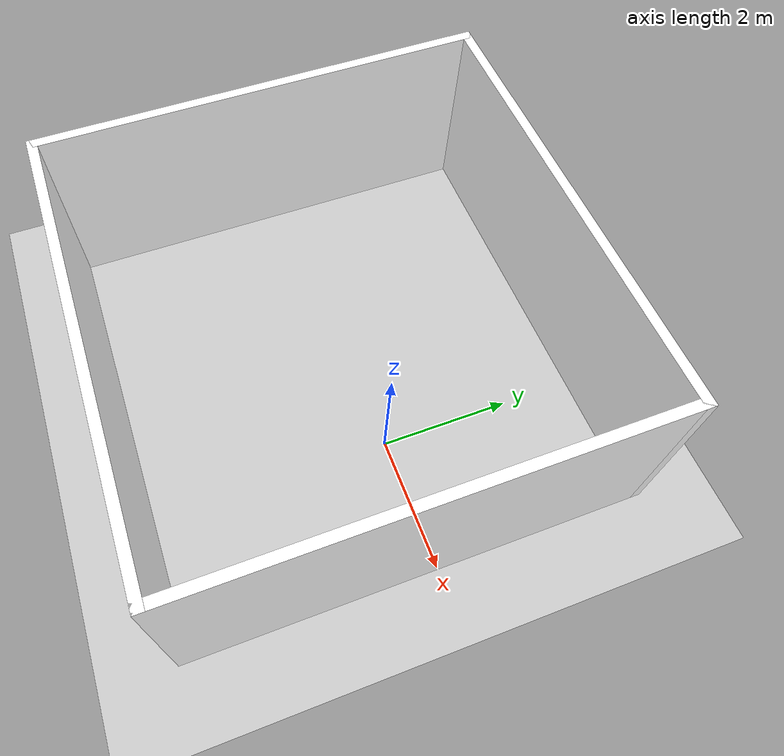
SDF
<sdf version="1.6">
 <world name="default">
  <light name="sun" type="directional">
   <pose>0 0 10 0 -0 0</pose>
   <diffuse>0.8 0.8 0.8 1</diffuse>
   <specular>0.2 0.2 0.2 1</specular>
   <attenuation>
    <range>1000</range>
    <constant>0.9</constant>
    <linear>0.01</linear>
    <quadratic>0.001</quadratic>
   </attenuation>
   <direction>-0.5 0.1 -0.9</direction>
  </light>
  <model name="ground_plane">
   <static>1</static>
   <link name="link">
    <collision name="collision">
     <geometry><plane><normal>0 0 1</normal><size>100 100</size></plane></geometry>
     <surface>
      <contact><collide_bitmask>65535</collide_bitmask></contact>
      <friction><ode><mu>100</mu><mu2>50</mu2></ode></friction>
     </surface>
    </collision>
    <visual name="visual">
     <cast_shadows>0</cast_shadows>
     <geometry><plane><normal>0 0 1</normal><size>100 100</size></plane></geometry>
     <material>
      <script><uri>file://media/materials/scripts/gazebo.material</uri><name>Gazebo/Grey</name></script>
     </material>
    </visual>
   </link>
  </model>
  <physics name="default_physics" default="0" type="ode">
   <real_time_update_rate>1000</real_time_update_rate>
   <max_step_size>0.001</max_step_size>
   <real_time_factor>1</real_time_factor>
   <ode>
    <solver>
     <type>quick</type>
     <iters>150</iters>
     <precon_iters>0</precon_iters>
     <sor>1.4</sor>
     <use_dynamic_moi_rescaling>1</use_dynamic_moi_rescaling>
    </solver>
    <constraints>
     <cfm>1e-05</cfm>
     <erp>0.2</erp>
     <contact_max_correcting_vel>2000</contact_max_correcting_vel>
     <contact_surface_layer>0.01</contact_surface_layer>
    </constraints>
   </ode>
  </physics>
  <scene><ambient>0.4 0.4 0.4 1</ambient><background>0.7 0.7 0.7 1</background><shadows>1</shadows></scene>
  <gravity>0 0 -9.8</gravity>
  <magnetic_field>6e-06 2.3e-05 -4.2e-05</magnetic_field>
  <atmosphere type="adiabatic"/>
  <spherical_coordinates>
   <surface_model>EARTH_WGS84</surface_model>
   <latitude_deg>0</latitude_deg>
   <longitude_deg>0</longitude_deg>
   <elevation>0</elevation>
   <heading_deg>0</heading_deg>
  </spherical_coordinates>
  <model name="turtlebot3_square10">
   <link name="Wall_0">
    <pose>0 3.425 0 0 -0 0</pose>
    <inertial>
     <mass>1</mass>
     <inertia><ixx>1</ixx><ixy>0</ixy><ixz>0</ixz><iyy>1</iyy><iyz>0</iyz><izz>1</izz></inertia>
    </inertial>
    <visual name="Wall_0_Visual">
     <pose>0 0 1.5 0 -0 0</pose>
     <geometry><box><size>7 0.15 3</size></box></geometry>
     <material>
      <script>
       <uri>model://turtlebot3_square10/materials/scripts</uri>
       <uri>model://turtlebot3_square10/materials/textures</uri>
       <name>BrickBox/Diffuse</name>
      </script>
      <ambient>1 1 1 1</ambient>
      <shader type="pixel"><normal_map>__default__</normal_map></shader>
      <diffuse>1 1 1 1</diffuse>
      <specular>0.2 0.2 0.2 1</specular>
      <emissive>0 0 0 1</emissive>
     </material>
    </visual>
    <collision name="Wall_0_Collision">
     <pose>0 0 1.5 0 -0 0</pose>
     <geometry><box><size>7 0.15 3</size></box></geometry>
     <surface>
      <friction>
       <ode><mu>1</mu><mu2>1</mu2><fdir1>0 0 0</fdir1><slip1>0</slip1><slip2>0</slip2></ode>
       <torsional>
        <coefficient>1</coefficient>
        <patch_radius>0</patch_radius>
        <surface_radius>0</surface_radius>
        <use_patch_radius>1</use_patch_radius>
        <ode><slip>0</slip></ode>
       </torsional>
      </friction>
      <bounce><restitution_coefficient>0</restitution_coefficient><threshold>1e+06</threshold></bounce>
      <contact>
       <collide_without_contact>0</collide_without_contact>
       <collide_without_contact_bitmask>1</collide_without_contact_bitmask>
       <collide_bitmask>1</collide_bitmask>
       <ode>
        <soft_cfm>0</soft_cfm>
        <soft_erp>0.2</soft_erp>
        <kp>1e+13</kp>
        <kd>1</kd>
        <max_vel>0.01</max_vel>
        <min_depth>0</min_depth>
       </ode>
       <bullet>
        <split_impulse>1</split_impulse>
        <split_impulse_penetration_threshold>-0.01</split_impulse_penetration_threshold>
        <soft_cfm>0</soft_cfm>
        <soft_erp>0.2</soft_erp>
        <kp>1e+13</kp>
        <kd>1</kd>
       </bullet>
      </contact>
     </surface>
    </collision>
   </link>
   <link name="Wall_2">
    <pose>-3.425 0 0 0 0 -1.5708</pose>
    <inertial>
     <mass>1</mass>
     <inertia><ixx>1</ixx><ixy>0</ixy><ixz>0</ixz><iyy>1</iyy><iyz>0</iyz><izz>1</izz></inertia>
    </inertial>
    <visual name="Wall_2_Visual">
     <pose>0 0 1.5 0 -0 0</pose>
     <geometry><box><size>7 0.15 3</size></box></geometry>
     <material>
      <script>
       <uri>model://turtlebot3_square10/materials/scripts</uri>
       <uri>model://turtlebot3_square10/materials/textures</uri>
       <name>BrickBox1/Diffuse</name>
      </script>
      <ambient>1 1 1 1</ambient>
      <shader type="pixel"><normal_map>__default__</normal_map></shader>
      <diffuse>1 1 1 1</diffuse>
      <specular>0.2 0.2 0.2 1</specular>
      <emissive>0 0 0 1</emissive>
     </material>
    </visual>
    <collision name="Wall_2_Collision">
     <pose>0 0 1.5 0 -0 0</pose>
     <geometry><box><size>7 0.15 3</size></box></geometry>
     <surface>
      <friction>
       <ode><mu>1</mu><mu2>1</mu2><fdir1>0 0 0</fdir1><slip1>0</slip1><slip2>0</slip2></ode>
       <torsional>
        <coefficient>1</coefficient>
        <patch_radius>0</patch_radius>
        <surface_radius>0</surface_radius>
        <use_patch_radius>1</use_patch_radius>
        <ode><slip>0</slip></ode>
       </torsional>
      </friction>
      <bounce><restitution_coefficient>0</restitution_coefficient><threshold>1e+06</threshold></bounce>
      <contact>
       <collide_without_contact>0</collide_without_contact>
       <collide_without_contact_bitmask>1</collide_without_contact_bitmask>
       <collide_bitmask>1</collide_bitmask>
       <ode>
        <soft_cfm>0</soft_cfm>
        <soft_erp>0.2</soft_erp>
        <kp>1e+13</kp>
        <kd>1</kd>
        <max_vel>0.01</max_vel>
        <min_depth>0</min_depth>
       </ode>
       <bullet>
        <split_impulse>1</split_impulse>
        <split_impulse_penetration_threshold>-0.01</split_impulse_penetration_threshold>
        <soft_cfm>0</soft_cfm>
        <soft_erp>0.2</soft_erp>
        <kp>1e+13</kp>
        <kd>1</kd>
       </bullet>
      </contact>
     </surface>
    </collision>
   </link>
   <link name="Wall_3">
    <pose>0 -3.425 0 0 -0 0</pose>
    <inertial>
     <mass>1</mass>
     <inertia><ixx>1</ixx><ixy>0</ixy><ixz>0</ixz><iyy>1</iyy><iyz>0</iyz><izz>1</izz></inertia>
    </inertial>
    <visual name="Wall_3_Visual">
     <pose>0 0 1.5 0 -0 0</pose>
     <geometry><box><size>7 0.15 3</size></box></geometry>
     <material>
      <script>
       <uri>model://turtlebot3_square10/materials/scripts</uri>
       <uri>model://turtlebot3_square10/materials/textures</uri>
       <name>BrickBox2/Diffuse</name>
      </script>
      <ambient>1 1 1 0</ambient>
      <shader type="pixel"><normal_map>__default__</normal_map></shader>
      <diffuse>1 1 1 0</diffuse>
      <specular>0.2 0.2 0.2 0</specular>
      <emissive>0 0 0 1</emissive>
     </material>
    </visual>
    <collision name="Wall_3_Collision">
     <pose>0 0 1.5 0 -0 0</pose>
     <geometry><box><size>7 0.15 3</size></box></geometry>
     <surface>
      <friction>
       <ode><mu>1</mu><mu2>1</mu2><fdir1>0 0 0</fdir1><slip1>0</slip1><slip2>0</slip2></ode>
       <torsional>
        <coefficient>1</coefficient>
        <patch_radius>0</patch_radius>
        <surface_radius>0</surface_radius>
        <use_patch_radius>1</use_patch_radius>
        <ode><slip>0</slip></ode>
       </torsional>
      </friction>
      <bounce><restitution_coefficient>0</restitution_coefficient><threshold>1e+06</threshold></bounce>
      <contact>
       <collide_without_contact>0</collide_without_contact>
       <collide_without_contact_bitmask>1</collide_without_contact_bitmask>
       <collide_bitmask>1</collide_bitmask>
       <ode>
        <soft_cfm>0</soft_cfm>
        <soft_erp>0.2</soft_erp>
        <kp>1e+13</kp>
        <kd>1</kd>
        <max_vel>0.01</max_vel>
        <min_depth>0</min_depth>
       </ode>
       <bullet>
        <split_impulse>1</split_impulse>
        <split_impulse_penetration_threshold>-0.01</split_impulse_penetration_threshold>
        <soft_cfm>0</soft_cfm>
        <soft_erp>0.2</soft_erp>
        <kp>1e+13</kp>
        <kd>1</kd>
       </bullet>
      </contact>
     </surface>
    </collision>
   </link>
   <link name="Wall_4">
    <pose>3.425 0 0 0 -0 1.5708</pose>
    <inertial>
     <mass>1</mass>
     <inertia><ixx>1</ixx><ixy>0</ixy><ixz>0</ixz><iyy>1</iyy><iyz>0</iyz><izz>1</izz></inertia>
    </inertial>
    <visual name="Wall_4_Visual">
     <pose>0 0 1.5 0 -0 0</pose>
     <geometry><box><size>7 0.15 3</size></box></geometry>
     <material>
      <script>
       <uri>model://turtlebot3_square10/materials/scripts</uri>
       <uri>model://turtlebot3_square10/materials/textures</uri>
       <name>BrickBox3/Diffuse</name>
      </script>
      <ambient>1 1 1 1</ambient>
      <shader type="pixel"><normal_map>__default__</normal_map></shader>
      <diffuse>1 1 1 1</diffuse>
      <specular>0.2 0.2 0.2 1</specular>
      <emissive>0 0 0 1</emissive>
     </material>
    </visual>
    <collision name="Wall_4_Collision">
     <pose>0 0 1.5 0 -0 0</pose>
     <geometry><box><size>7 0.15 3</size></box></geometry>
     <surface>
      <friction>
       <ode><mu>1</mu><mu2>1</mu2><fdir1>0 0 0</fdir1><slip1>0</slip1><slip2>0</slip2></ode>
       <torsional>
        <coefficient>1</coefficient>
        <patch_radius>0</patch_radius>
        <surface_radius>0</surface_radius>
        <use_patch_radius>1</use_patch_radius>
        <ode><slip>0</slip></ode>
       </torsional>
      </friction>
      <bounce><restitution_coefficient>0</restitution_coefficient><threshold>1e+06</threshold></bounce>
      <contact>
       <collide_without_contact>0</collide_without_contact>
       <collide_without_contact_bitmask>1</collide_without_contact_bitmask>
       <collide_bitmask>1</collide_bitmask>
       <ode>
        <soft_cfm>0</soft_cfm>
        <soft_erp>0.2</soft_erp>
        <kp>1e+13</kp>
        <kd>1</kd>
        <max_vel>0.01</max_vel>
        <min_depth>0</min_depth>
       </ode>
       <bullet>
        <split_impulse>1</split_impulse>
        <split_impulse_penetration_threshold>-0.01</split_impulse_penetration_threshold>
        <soft_cfm>0</soft_cfm>
        <soft_erp>0.2</soft_erp>
        <kp>1e+13</kp>
        <kd>1</kd>
       </bullet>
      </contact>
     </surface>
    </collision>
   </link>
   <static>1</static>
   <pose>-1.47109 -0.252338 0 0 -0 0</pose>
  </model>
  <model name="safe">
   <link name="link">
    <pose>-0.5 0 0.5 0 -0 0</pose>
    <inertial>
     <mass>1</mass>
     <inertia>
      <ixx>0.166667</ixx>
      <ixy>0</ixy>
      <ixz>0</ixz>
      <iyy>0.166667</iyy>
      <iyz>0</iyz>
      <izz>0.166667</izz>
     </inertia>
     <pose>-0.5 0 0.5 0 -0 0</pose>
    </inertial>
    <gravity>0</gravity>
    <visual name="visual">
     <geometry><box><size>0.005 0.36 0.34</size></box></geometry>
     <material>
      <script>
       <uri>model://safe/material/scripts</uri>
       <uri>model://safe/material/textures</uri>
       <name>safe/Diffuse</name>
      </script>
      <shader type="pixel"><normal_map>__default__</normal_map></shader>
      <diffuse>1 1 1 1</diffuse>
      <specular>0.2 0.2 0.2 1</specular>
      <emissive>0 0 0 1</emissive>
     </material>
    </visual>
    <collision name="collision">
     <pose>0 0 1.5 0 -0 0</pose>
     <geometry><box><size>0.005 0.36 0.34</size></box></geometry>
     <surface>
      <friction>
       <ode><mu>1</mu><mu2>1</mu2><fdir1>0 0 0</fdir1><slip1>0</slip1><slip2>0</slip2></ode>
       <torsional>
        <coefficient>1</coefficient>
        <patch_radius>0</patch_radius>
        <surface_radius>0</surface_radius>
        <use_patch_radius>1</use_patch_radius>
        <ode><slip>0</slip></ode>
       </torsional>
      </friction>
      <bounce><restitution_coefficient>0</restitution_coefficient><threshold>1e+06</threshold></bounce>
      <contact>
       <collide_without_contact>0</collide_without_contact>
       <collide_without_contact_bitmask>1</collide_without_contact_bitmask>
       <collide_bitmask>1</collide_bitmask>
       <ode>
        <soft_cfm>0</soft_cfm>
        <soft_erp>0.2</soft_erp>
        <kp>1e+13</kp>
        <kd>1</kd>
        <max_vel>0.01</max_vel>
        <min_depth>0</min_depth>
       </ode>
       <bullet>
        <split_impulse>1</split_impulse>
        <split_impulse_penetration_threshold>-0.01</split_impulse_penetration_threshold>
        <soft_cfm>0</soft_cfm>
        <soft_erp>0.2</soft_erp>
        <kp>1e+13</kp>
        <kd>1</kd>
       </bullet>
      </contact>
     </surface>
    </collision>
   </link>
   <static>0</static>
   <pose>2.35947 -0.24569 0.317038 0 -0 0</pose>
  </model>
 </world>
</sdf>
